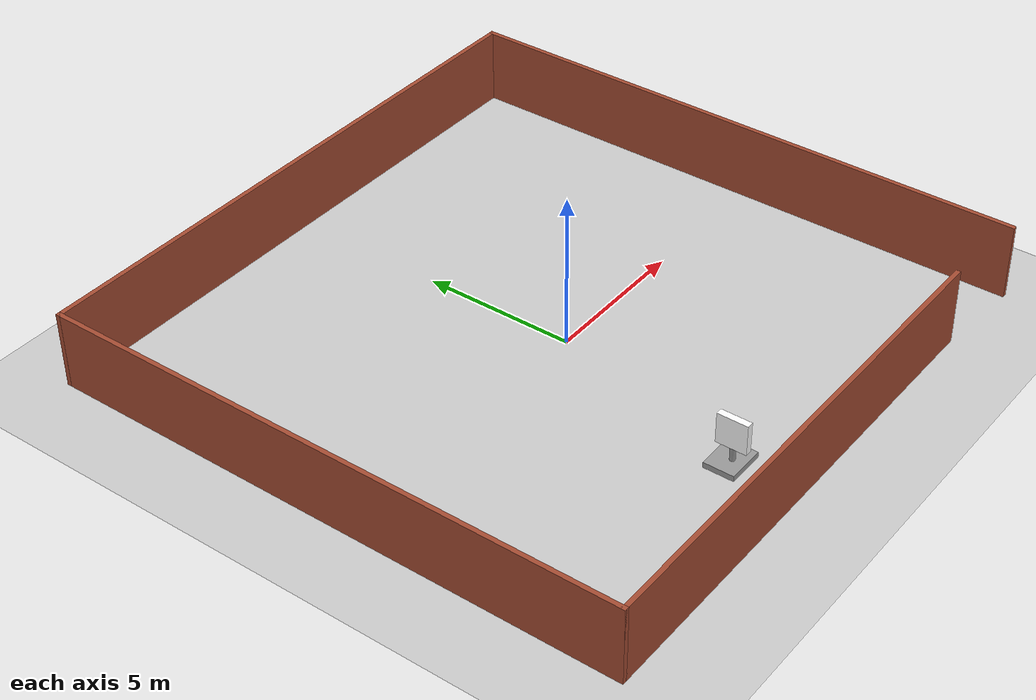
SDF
<sdf version="1.6">
 <world name="default">
  <light name="sun" type="directional">
   <pose>0 0 10 0 -0 0</pose>
   <diffuse>0.8 0.8 0.8 1</diffuse>
   <specular>0.2 0.2 0.2 1</specular>
   <attenuation>
    <range>1000</range>
    <constant>0.9</constant>
    <linear>0.01</linear>
    <quadratic>0.001</quadratic>
   </attenuation>
   <direction>-0.5 0.1 -0.9</direction>
  </light>
  <model name="ground_plane">
   <static>1</static>
   <link name="link">
    <collision name="collision">
     <geometry><plane><normal>0 0 1</normal><size>100 100</size></plane></geometry>
     <surface>
      <contact><collide_bitmask>65535</collide_bitmask></contact>
      <friction><ode><mu>100</mu><mu2>50</mu2></ode></friction>
     </surface>
    </collision>
    <visual name="visual">
     <cast_shadows>0</cast_shadows>
     <geometry><plane><normal>0 0 1</normal><size>100 100</size></plane></geometry>
     <material>
      <script><uri>file://media/materials/scripts/gazebo.material</uri><name>Gazebo/Grey</name></script>
     </material>
    </visual>
   </link>
  </model>
  <gravity>0 0 -9.8</gravity>
  <magnetic_field>6e-06 2.3e-05 -4.2e-05</magnetic_field>
  <atmosphere type="adiabatic"/>
  <physics name="default_physics" default="0" type="ode">
   <max_step_size>0.001</max_step_size>
   <real_time_factor>1</real_time_factor>
   <real_time_update_rate>1000</real_time_update_rate>
  </physics>
  <scene><ambient>0.4 0.4 0.4 1</ambient><background>0.7 0.7 0.7 1</background><shadows>1</shadows></scene>
  <audio><device>default</device></audio>
  <spherical_coordinates>
   <surface_model>EARTH_WGS84</surface_model>
   <latitude_deg>0</latitude_deg>
   <longitude_deg>0</longitude_deg>
   <elevation>0</elevation>
   <heading_deg>0</heading_deg>
  </spherical_coordinates>
  <model name="house_with_wall">
   <pose>-0.15 0.485 0 0 -0 0</pose>
   <link name="Wall_1">
    <collision name="Wall_1_Collision">
     <geometry><box><size>19.75 0.15 2.5</size></box></geometry>
     <pose>0 0 1.25 0 -0 0</pose>
    </collision>
    <visual name="Wall_1_Visual">
     <pose>0 0 1.25 0 -0 0</pose>
     <geometry><box><size>19.75 0.15 2.5</size></box></geometry>
     <material>
      <script><uri>file://media/materials/scripts/gazebo.material</uri><name>Gazebo/Bricks</name></script>
      <ambient>1 1 1 1</ambient>
     </material>
     <meta><layer>0</layer></meta>
    </visual>
    <pose>0 9.675 0 0 -0 0</pose>
   </link>
   <link name="Wall_3">
    <collision name="Wall_3_Collision">
     <geometry><box><size>19.5 0.15 2.5</size></box></geometry>
     <pose>0 0 1.25 0 -0 0</pose>
    </collision>
    <visual name="Wall_3_Visual">
     <pose>0 0 1.25 0 -0 0</pose>
     <geometry><box><size>19.5 0.15 2.5</size></box></geometry>
     <material>
      <script><uri>file://media/materials/scripts/gazebo.material</uri><name>Gazebo/Bricks</name></script>
      <ambient>1 1 1 1</ambient>
     </material>
     <meta><layer>0</layer></meta>
    </visual>
    <pose>9.8 0 0 0 -0 -1.5708</pose>
   </link>
   <link name="Wall_7">
    <collision name="Wall_7_Collision">
     <geometry><box><size>19.25 0.15 2.5</size></box></geometry>
     <pose>0 0 1.25 0 -0 0</pose>
    </collision>
    <visual name="Wall_7_Visual">
     <pose>0 0 1.25 0 -0 0</pose>
     <geometry><box><size>19.25 0.15 2.5</size></box></geometry>
     <material>
      <script><uri>file://media/materials/scripts/gazebo.material</uri><name>Gazebo/Bricks</name></script>
      <ambient>1 1 1 1</ambient>
     </material>
     <meta><layer>0</layer></meta>
    </visual>
    <pose>-9.8 0.125 0 0 -0 -1.5708</pose>
   </link>
   <link name="Wall_9">
    <collision name="Wall_9_Collision">
     <geometry><box><size>16.75 0.15 2.5</size></box></geometry>
     <pose>0 0 1.25 0 -0 0</pose>
    </collision>
    <visual name="Wall_9_Visual">
     <pose>0 0 1.25 0 -0 0</pose>
     <geometry><box><size>16.75 0.15 2.5</size></box></geometry>
     <material>
      <script><uri>file://media/materials/scripts/gazebo.material</uri><name>Gazebo/Bricks</name></script>
      <ambient>1 1 1 1</ambient>
     </material>
     <meta><layer>0</layer></meta>
    </visual>
    <pose>-1.5 -9.425 0 0 -0 0</pose>
   </link>
   <static>1</static>
  </model>
  <model name="marker">
   <link name="link_1">
    <inertial>
     <mass>0.228668</mass>
     <inertia>
      <ixx>0.0197025</ixx>
      <ixy>0</ixy>
      <ixz>0</ixz>
      <iyy>0.0300022</iyy>
      <iyz>0</iyz>
      <izz>0.0484109</izz>
     </inertia>
    </inertial>
    <pose>0.04242 0.054506 -0.535068 0 -0 0</pose>
    <visual name="visual">
     <geometry><box><size>1.24117 1 0.184247</size></box></geometry>
     <material>
      <lighting>1</lighting>
      <script><uri>file://media/materials/scripts/gazebo.material</uri><name>Gazebo/Grey</name></script>
      <emissive>0 0 0 1</emissive>
     </material>
    </visual>
    <collision name="collision">
     <geometry><box><size>1.24117 1 0.184247</size></box></geometry>
     <surface>
      <friction>
       <ode><mu>1</mu><mu2>1</mu2><fdir1>0 0 0</fdir1><slip1>0</slip1><slip2>0</slip2></ode>
       <torsional>
        <coefficient>1</coefficient>
        <patch_radius>0</patch_radius>
        <surface_radius>0</surface_radius>
        <use_patch_radius>1</use_patch_radius>
        <ode><slip>0</slip></ode>
       </torsional>
      </friction>
      <bounce><restitution_coefficient>0</restitution_coefficient><threshold>1e+06</threshold></bounce>
      <contact>
       <collide_without_contact>0</collide_without_contact>
       <collide_without_contact_bitmask>1</collide_without_contact_bitmask>
       <collide_bitmask>1</collide_bitmask>
       <ode>
        <soft_cfm>0</soft_cfm>
        <soft_erp>0.2</soft_erp>
        <kp>1e+13</kp>
        <kd>1</kd>
        <max_vel>0.01</max_vel>
        <min_depth>0</min_depth>
       </ode>
       <bullet>
        <split_impulse>1</split_impulse>
        <split_impulse_penetration_threshold>-0.01</split_impulse_penetration_threshold>
        <soft_cfm>0</soft_cfm>
        <soft_erp>0.2</soft_erp>
        <kp>1e+13</kp>
        <kd>1</kd>
       </bullet>
      </contact>
     </surface>
    </collision>
   </link>
   <link name="link_2">
    <inertial>
     <mass>0.030775</mass>
     <inertia>
      <ixx>0.00262378</ixx>
      <ixy>0</ixy>
      <ixz>0</ixz>
      <iyy>0.00262378</iyy>
      <iyz>0</iyz>
      <izz>0.000118387</izz>
     </inertia>
    </inertial>
    <pose>-0.012339 -0.030406 0.00049 0 -0 0</pose>
    <visual name="visual">
     <geometry><cylinder><radius>0.0877138</radius><length>1</length></cylinder></geometry>
     <material>
      <lighting>1</lighting>
      <script><uri>file://media/materials/scripts/gazebo.material</uri><name>Gazebo/Grey</name></script>
      <emissive>0 0 0 1</emissive>
     </material>
    </visual>
    <collision name="collision">
     <geometry><cylinder><radius>0.087714</radius><length>1</length></cylinder></geometry>
     <surface>
      <friction>
       <ode><mu>1</mu><mu2>1</mu2><fdir1>0 0 0</fdir1><slip1>0</slip1><slip2>0</slip2></ode>
       <torsional>
        <coefficient>1</coefficient>
        <patch_radius>0</patch_radius>
        <surface_radius>0</surface_radius>
        <use_patch_radius>1</use_patch_radius>
        <ode><slip>0</slip></ode>
       </torsional>
      </friction>
      <bounce><restitution_coefficient>0</restitution_coefficient><threshold>1e+06</threshold></bounce>
      <contact>
       <collide_without_contact>0</collide_without_contact>
       <collide_without_contact_bitmask>1</collide_without_contact_bitmask>
       <collide_bitmask>1</collide_bitmask>
       <ode>
        <soft_cfm>0</soft_cfm>
        <soft_erp>0.2</soft_erp>
        <kp>1e+13</kp>
        <kd>1</kd>
        <max_vel>0.01</max_vel>
        <min_depth>0</min_depth>
       </ode>
       <bullet>
        <split_impulse>1</split_impulse>
        <split_impulse_penetration_threshold>-0.01</split_impulse_penetration_threshold>
        <soft_cfm>0</soft_cfm>
        <soft_erp>0.2</soft_erp>
        <kp>1e+13</kp>
        <kd>1</kd>
       </bullet>
      </contact>
     </surface>
    </collision>
   </link>
   <link name="link_3">
    <inertial>
     <mass>0.21905</mass>
     <inertia>
      <ixx>0.0365083</ixx>
      <ixy>0</ixy>
      <ixz>0</ixz>
      <iyy>0.0191299</iyy>
      <iyz>0</iyz>
      <izz>0.0191299</izz>
     </inertia>
    </inertial>
    <pose>-0.030077 -0.024099 0.534578 0 -0 0</pose>
    <visual name="visual">
     <geometry><box><size>0.219027 1 1</size></box></geometry>
     <material>
      <script>
       <uri>file:///home/vedika/catkin_ws/src/urdf_robots/models/marker/media/materials/scripts</uri>
       <uri>file:///home/vedika/catkin_ws/src/urdf_robots/models/marker/media/textures</uri>
       <name>aruco/standard_opp</name>
      </script>
      <emissive>0 0 0 1</emissive>
      <shader type="vertex"><normal_map>__default__</normal_map></shader>
      <ambient>1 1 1 1</ambient>
      <diffuse>1 1 1 1</diffuse>
      <specular>0 0 0 1</specular>
     </material>
    </visual>
    <collision name="collision">
     <geometry><box><size>0.219027 1 1</size></box></geometry>
     <surface>
      <friction>
       <ode><mu>1</mu><mu2>1</mu2><fdir1>0 0 0</fdir1><slip1>0</slip1><slip2>0</slip2></ode>
       <torsional>
        <coefficient>1</coefficient>
        <patch_radius>0</patch_radius>
        <surface_radius>0</surface_radius>
        <use_patch_radius>1</use_patch_radius>
        <ode><slip>0</slip></ode>
       </torsional>
      </friction>
      <bounce><restitution_coefficient>0</restitution_coefficient><threshold>1e+06</threshold></bounce>
      <contact>
       <collide_without_contact>0</collide_without_contact>
       <collide_without_contact_bitmask>1</collide_without_contact_bitmask>
       <collide_bitmask>1</collide_bitmask>
       <ode>
        <soft_cfm>0</soft_cfm>
        <soft_erp>0.2</soft_erp>
        <kp>1e+13</kp>
        <kd>1</kd>
        <max_vel>0.01</max_vel>
        <min_depth>0</min_depth>
       </ode>
       <bullet>
        <split_impulse>1</split_impulse>
        <split_impulse_penetration_threshold>-0.01</split_impulse_penetration_threshold>
        <soft_cfm>0</soft_cfm>
        <soft_erp>0.2</soft_erp>
        <kp>1e+13</kp>
        <kd>1</kd>
       </bullet>
      </contact>
     </surface>
    </collision>
   </link>
   <joint name="link_1_JOINT_0" type="fixed">
    <parent>link_1</parent>
    <child>link_2</child>
    <physics>
     <ode><limit><cfm>0</cfm><erp>0.2</erp></limit><suspension><cfm>0</cfm><erp>0.2</erp></suspension></ode>
    </physics>
   </joint>
   <joint name="link_2_JOINT_1" type="fixed">
    <parent>link_2</parent>
    <child>link_3</child>
    <physics>
     <ode><limit><cfm>0</cfm><erp>0.2</erp></limit><suspension><cfm>0</cfm><erp>0.2</erp></suspension></ode>
    </physics>
   </joint>
   <static>0</static>
   <pose>-1.68991 -6.77909 0.627187 -4e-06 -4e-06 0.001368</pose>
  </model>
 </world>
</sdf>
